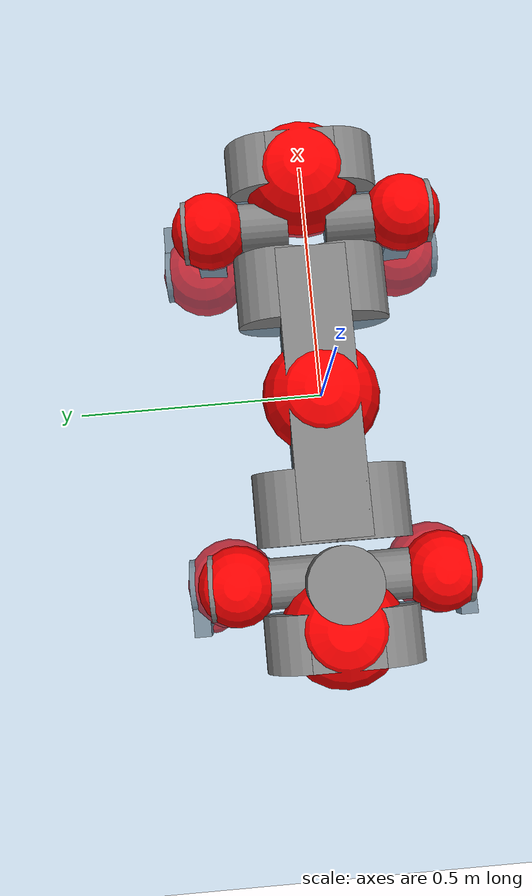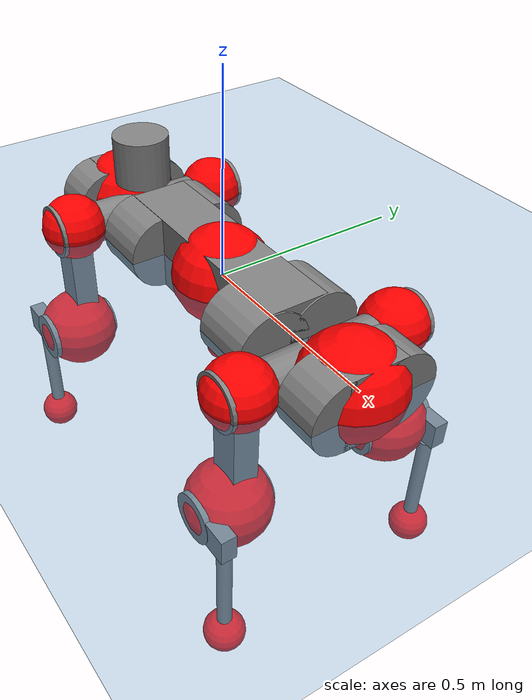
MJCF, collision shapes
<mujoco model="anymal_c">
  <compiler angle="radian" assetdir="assets" balanceinertia="true" inertiafromgeom="false"/>

  <option timestep="0.005" density="1.2" viscosity="2e-05"/>

  <size nkey="1"/>

  <visual>
    <quality shadowsize="8192"/>
    <map shadowclip="0.5"/>
  </visual>

  <default>
    <default class="/">
      <material specular="0" shininess="0.25"/>
      <geom contype="0" conaffinity="0" group="1" solref="-1000 -80"/>
      <site size="0.01 0.005 0.005" group="5"/>
      <general forcelimited="true" forcerange="-80 80" biastype="affine" gainprm="80" biasprm="0 -80 -2"/>
      <default class="anymal_c">
        <joint armature="0.01" damping="0.01" frictionloss="0.1"/>
        <default class="visual">
          <geom type="mesh" group="2"/>
          <default class="visual_zflip"/>
        </default>
        <default class="collision">
          <geom type="cylinder" group="3"/>
          <default class="foot">
            <geom size="0.03 0 0" type="sphere" condim="6" priority="1" friction="0.8 0.02 0.01" solimp="0.015 1 0.03"/>
          </default>
        </default>
      </default>
      <default class="reward_collision_sphere">
        <geom group="5" rgba="1 0 0 1"/>
      </default>
    </default>
  </default>

  <asset>
    <texture type="skybox" colorspace="auto" name="//unnamed_texture_0" builtin="gradient" rgb1="0.95 0.95 0.95" rgb2="0.95 0.95 0.95" width="100" height="600"/>
    <texture type="2d" colorspace="auto" name="texplane" builtin="checker" rgb1="0.345 0.575 0.748" rgb2="0.345 0.575 0.748" markrgb="1 1 1" width="512" height="512"/>
    <texture type="2d" colorspace="linear" name="base" file="base.png"/>
    <texture type="2d" colorspace="linear" name="top_shell" file="top_shell.png"/>
    <texture type="2d" colorspace="linear" name="bottom_shell" file="bottom_shell.png"/>
    <texture type="2d" colorspace="linear" name="remote" file="remote.png"/>
    <texture type="2d" colorspace="linear" name="hatch" file="hatch.png"/>
    <texture type="2d" colorspace="linear" name="handle" file="handle.png"/>
    <texture type="2d" colorspace="linear" name="face" file="face.png"/>
    <texture type="2d" colorspace="linear" name="battery" file="battery.png"/>
    <texture type="2d" colorspace="linear" name="lidar_cage" file="lidar_cage.png"/>
    <texture type="2d" colorspace="linear" name="depth_camera" file="depth_camera.png"/>
    <texture type="2d" colorspace="linear" name="wide_angle_camera" file="wide_angle_camera.png"/>
    <texture type="2d" colorspace="linear" name="lidar" file="lidar.png"/>
    <texture type="2d" colorspace="linear" name="drive" file="drive.png"/>
    <texture type="2d" colorspace="linear" name="hip_l" file="hip_l.png"/>
    <texture type="2d" colorspace="linear" name="shank_l" file="shank_l.png"/>
    <texture type="2d" colorspace="linear" name="foot" file="foot.png"/>
    <texture type="2d" colorspace="linear" name="thigh" file="thigh.png"/>
    <texture type="2d" colorspace="linear" name="shank_r" file="shank_r.png"/>
    <texture type="2d" colorspace="linear" name="hip_r" file="hip_r.png"/>
    <material name="MatPlane" class="/" texture="texplane" texuniform="true" texrepeat="2 2" specular="0.9" shininess="0.5"/>
    <material name="black_plastic" class="/" rgba="0.007 0.007 0.007 1"/>
    <material name="green" class="/" rgba="0.052 0.178 0.033 1"/>
    <material name="red" class="/" rgba="0.178 0.006 0.005 1"/>
    <material name="yellow" class="/" rgba="0.178 0.119 0.006 1"/>
    <material name="lwl" class="/" rgba="0.8 0.8 0.8 1"/>
    <material name="base" class="/" texture="base"/>
    <material name="top_shell" class="/" texture="top_shell"/>
    <material name="bottom_shell" class="/" texture="bottom_shell"/>
    <material name="hip_l" class="/" texture="hip_l"/>
    <material name="thigh" class="/" texture="thigh"/>
    <material name="shank_l" class="/" texture="shank_l"/>
    <material name="foot" class="/" texture="foot"/>
    <material name="hip_r" class="/" texture="hip_r"/>
    <material name="shank" class="/" texture="shank_r"/>
    <material name="hatch" class="/" texture="hatch"/>
    <material name="remote" class="/" texture="remote"/>
    <material name="handle" class="/" texture="handle"/>
    <material name="face" class="/" texture="face"/>
    <material name="depth_camera" class="/" texture="depth_camera"/>
    <material name="wide_angle_camera" class="/" texture="wide_angle_camera"/>
    <material name="battery" class="/" texture="battery"/>
    <material name="lidar_cage" class="/" texture="lidar_cage"/>
    <material name="lidar" class="/" texture="lidar"/>
    <material name="drive" class="/" texture="drive"/>
    <mesh name="base_0" class="/" file="base_0.obj"/>
    <mesh name="base_1" class="/" file="base_1.obj"/>
    <mesh name="base_2" class="/" file="base_2.obj"/>
    <mesh name="base_3" class="/" file="base_3.obj"/>
    <mesh name="base_4" class="/" file="base_4.obj"/>
    <mesh name="base_5" class="/" file="base_5.obj"/>
    <mesh name="top_shell" class="/" file="top_shell.obj"/>
    <mesh name="bottom_shell" class="/" file="bottom_shell.obj"/>
    <mesh name="remote" class="/" file="remote.obj"/>
    <mesh name="handle" class="/" file="handle.obj"/>
    <mesh name="face" class="/" file="face.obj"/>
    <mesh name="wide_angle_camera" class="/" file="wide_angle_camera.obj"/>
    <mesh name="depth_camera" class="/" file="depth_camera.obj"/>
    <mesh name="battery" class="/" file="battery.obj"/>
    <mesh name="lidar_cage" class="/" file="lidar_cage.obj"/>
    <mesh name="lidar" class="/" file="lidar.obj"/>
    <mesh name="drive" class="/" file="drive.obj"/>
    <mesh name="hip_l" class="/" file="hip_l.obj"/>
    <mesh name="thigh" class="/" file="thigh.obj"/>
    <mesh name="shank_l" class="/" file="shank_l.obj"/>
    <mesh name="foot" class="/" file="foot.obj"/>
    <mesh name="hip_r" class="/" file="hip_r.obj"/>
    <mesh name="hatch" class="/" file="hatch.obj"/>
    <mesh name="shank_r" class="/" file="shank_r.obj"/>
  </asset>

  <worldbody>
    <geom name="floor" class="/" size="100 100 0.125" type="plane" group="0" material="MatPlane"/>
    <light name="toplight_shadow" class="/" pos="0 0 5" dir="0.0990148 0.0990148 -0.990148" type="directional" ambient="0.04 0.04 0.04" diffuse="0.55 0.55 0.55" specular="0.12 0.12 0.12"/>
    <light name="toplight_fill" class="/" pos="0 0 5" dir="0.0990148 0.0990148 -0.990148" type="directional" castshadow="false" ambient="0.04 0.04 0.04" diffuse="0.3 0.3 0.3" specular="0.08 0.08 0.08"/>
    <body name="trunk" childclass="anymal_c" pos="-0.000613141 5.08841e-05 0.00156693" quat="0.999999 0.000904384 0.000559264 0.0003936">
      <inertial pos="0.00181855 -0.0022669 0.0506395" quat="0.499859 0.500353 0.500243 0.499545" mass="21.2384" diaginertia="0.826189 0.498348 0.316442"/>
      <joint name="//unnamed_joint_0" type="free" armature="0" damping="0" frictionloss="0"/>
      <geom name="//unnamed_geom_1" class="visual" material="green" mesh="base_0"/>
      <geom name="//unnamed_geom_2" class="visual" material="yellow" mesh="base_1"/>
      <geom name="//unnamed_geom_3" class="visual" material="red" mesh="base_2"/>
      <geom name="//unnamed_geom_4" class="visual" material="black_plastic" mesh="base_3"/>
      <geom name="//unnamed_geom_5" class="visual" material="lwl" mesh="base_4"/>
      <geom name="//unnamed_geom_6" class="visual" material="base" mesh="base_5"/>
      <geom name="trunk_1" class="collision" size="0.298778 0.0721188 0.0927242" type="box"/>
      <geom name="trunk_2" class="collision" size="0.0927242 0.0746945" pos="0.229064 0.0670231 0" quat="0.707107 0 0.707107 0"/>
      <geom name="trunk_3" class="collision" size="0.0927242 0.0746945" pos="-0.229064 0.0670231 0" quat="0.707107 0 0.707107 0"/>
      <geom name="trunk_4" class="collision" size="0.0927242 0.0746945" pos="0.229064 -0.0670231 0" quat="0.707107 0 0.707107 0"/>
      <geom name="trunk_5" class="collision" size="0.0927242 0.0746945" pos="-0.229064 -0.0670231 0" quat="0.707107 0 0.707107 0"/>
      <geom name="//unnamed_geom_12" class="visual" material="top_shell" mesh="top_shell"/>
      <geom name="//unnamed_geom_13" class="visual" material="bottom_shell" mesh="bottom_shell"/>
      <geom name="//unnamed_geom_14" class="visual" material="remote" mesh="remote"/>
      <geom name="//unnamed_geom_15" class="visual" material="handle" mesh="handle"/>
      <geom name="//unnamed_geom_16" class="visual" pos="0.436538 0 0" quat="1 0 0 0" material="face" mesh="face"/>
      <geom name="trunk_6" class="collision" size="0.0566648 0.0721188 0.0927242" pos="0.494462 0 0" type="box"/>
      <geom name="//unnamed_geom_18" class="collision" size="0.0927242 0.0566648" pos="0.494462 0.0670231 0" quat="0.707107 0 0.707107 0"/>
      <geom name="//unnamed_geom_19" class="collision" size="0.0927242 0.0566648" pos="0.494462 -0.0670231 0" quat="0.707107 0 0.707107 0"/>
      <geom name="//unnamed_geom_20" class="visual" pos="0.486196 0 -0.0317461" quat="0.965926 0 0.258819 0" material="depth_camera" mesh="depth_camera"/>
      <geom name="//unnamed_geom_21" class="visual" pos="0.540275 0 0.0161701" material="wide_angle_camera" mesh="wide_angle_camera"/>
      <geom name="//unnamed_geom_22" class="visual_zflip" pos="-0.436538 0 0" quat="0 0 0 1" material="face" mesh="face"/>
      <geom name="trunk_7" class="collision" size="0.0566648 0.0721188 0.0927242" pos="-0.494462 0 0" quat="0 0 0 1" type="box"/>
      <geom name="//unnamed_geom_24" class="collision" size="0.0927242 0.0566648" pos="-0.494462 -0.0670231 0" quat="0 -0.707107 0 0.707107"/>
      <geom name="//unnamed_geom_25" class="collision" size="0.0927242 0.0566648" pos="-0.494462 0.0670231 0" quat="0 -0.707107 0 0.707107"/>
      <geom name="//unnamed_geom_26" class="visual" pos="-0.486196 0 -0.0317461" quat="0 -0.258819 0 0.965926" material="depth_camera" mesh="depth_camera"/>
      <geom name="//unnamed_geom_27" class="visual_zflip" pos="-0.540275 0 0.0161701" quat="0 0 0 1" material="wide_angle_camera" mesh="wide_angle_camera"/>
      <geom name="//unnamed_geom_28" class="visual" material="battery" mesh="battery"/>
      <geom name="//unnamed_geom_29" class="visual" pos="0 0.0719538 0.0311736" quat="0.683013 -0.183013 0.183013 0.683013" material="depth_camera" mesh="depth_camera"/>
      <geom name="//unnamed_geom_30" class="visual" pos="0 -0.0719538 0.0311736" quat="0.683013 0.183013 0.183013 -0.683013" material="depth_camera" mesh="depth_camera"/>
      <geom name="//unnamed_geom_31" class="visual" pos="-0.383353 0 0.0793923" quat="1 0 0 0" material="lidar_cage" mesh="lidar_cage"/>
      <geom name="trunk_8" class="collision" size="0.0721188 0.0618161" pos="-0.383353 0 0.144202"/>
      <geom name="//unnamed_geom_33" class="visual" pos="-0.383353 -3.75954e-05 0.1536" quat="0.707107 0 0 -0.707107" material="lidar" mesh="lidar"/>
      <geom name="//unnamed_geom_34" class="visual" pos="0.315845 0.0996208 -2.11647e-09" quat="0.258819 0.965926 0 0" material="drive" mesh="drive"/>
      <geom name="//unnamed_geom_35" class="visual" pos="0.315845 -0.0996208 2.11647e-09" quat="0.258819 -0.965926 0 0" material="drive" mesh="drive"/>
      <geom name="//unnamed_geom_36" class="visual" pos="-0.315845 0.0996208 2.11647e-09" quat="0 0 0.965926 -0.258819" material="drive" mesh="drive"/>
      <geom name="//unnamed_geom_37" class="visual" pos="-0.315845 -0.0996208 -2.11647e-09" quat="0 0 -0.965926 -0.258819" material="drive" mesh="drive"/>
      <geom name="//unnamed_geom_38" class="visual" pos="0.122167 0 0.0788522" quat="1 0 0 0" material="hatch" mesh="hatch"/>
      <geom name="//unnamed_geom_39" class="reward_collision_sphere" size="0.123632"/>
      <geom name="//unnamed_geom_40" class="reward_collision_sphere" size="0.123632" pos="0.473925 0 0"/>
      <geom name="//unnamed_geom_41" class="reward_collision_sphere" size="0.123632" pos="-0.473925 0 0"/>
      <site name="imu" pos="0.271112 0.00708567 0.0407766" size="0.0103027"/>
      <camera name="track" pos="0 -1.91495 0" quat="0.707107 0.707107 0 0" mode="trackcom"/>
      <camera name="ego_camera" pos="0.473925 0 -0.0432067" quat="-0.5 -0.5 0.5 0.5"/>
      <body name="LF_HIP" pos="0.313504 0.0969816 -0.00150041" quat="0.258525 0.966004 -4.17248e-05 -0.000265187">
        <inertial pos="0.0597874 -0.0171247 -0.00773044" quat="-0.129395 0.709804 -0.134594 0.679205" mass="3.10812" diaginertia="0.00754277 0.00379351 0.00478045"/>
        <joint name="LF_HAA" pos="0 0 0" axis="0.999993 0.00157768 0.00338368" range="-0.720631 0.530701" armature="0.00997852" damping="0.0246487" frictionloss="0.0883608"/>
        <geom name="//unnamed_geom_42" class="visual" pos="0 -0.000124502 2.04494e-05" quat="0.258819 -0.965926 0 0" material="hip_l" mesh="hip_l"/>
        <geom name="//unnamed_geom_43" class="visual" pos="0.0630847 -0.0752242 -0.0443382" quat="0.183013 -0.683013 0.683013 0.183013" material="drive" mesh="drive"/>
        <geom name="//unnamed_geom_44" class="collision" size="0.0515135 0.0721188" pos="0.0630847 -0.0114512 -0.00745855" quat="-0.353553 -0.612372 0.612372 -0.353553"/>
        <body name="LF_THIGH" pos="0.0607717 -0.0676698 -0.0436672" quat="0.183973 -0.682782 0.682883 0.183395">
          <inertial pos="0.0318418 -8.01889e-05 -0.262678" quat="0.992779 0.0033829 -0.0898477 0.0794032" mass="3.2816" diaginertia="0.0398614 0.0240143 0.00632036"/>
          <joint name="LF_HFE" pos="0 0 0" axis="1 0.000302271 -0.000214419" stiffness="0.00445632" range="-3.09738 3.19508" armature="0.00998781" damping="0.0212089" frictionloss="0.0890545"/>
          <geom name="//unnamed_geom_45" class="visual" pos="0.00190393 3.00014e-06 0" quat="0.707107 0 0 -0.707107" material="thigh" mesh="thigh"/>
          <geom name="//unnamed_geom_46" class="collision" size="0.0669675 0.0412108" pos="0.0421267 0 0" quat="0.5 0.5 -0.5 -0.5"/>
          <geom name="//unnamed_geom_47" class="collision" size="0.0386351 0.0309081 0.145591" pos="0.031595 0 -0.152643" quat="0.707107 0 0 -0.707107" type="box"/>
          <geom name="//unnamed_geom_48" class="visual" pos="0.105633 0 -0.307848" quat="1 0 0 0" material="drive" mesh="drive"/>
          <geom name="//unnamed_geom_49" class="collision" size="0.0515135 0.0721188" pos="0.031911 0 -0.307848" quat="0.707107 0 0.707107 0"/>
          <geom name="//unnamed_geom_50" class="reward_collision_sphere" size="0.0824215" pos="0.0263292 0 0"/>
          <body name="LF_SHANK" pos="0.106395 0.0022866 -0.306254" quat="1 9.62545e-05 0.000252241 9.42601e-06">
            <inertial pos="0.00520976 -0.0585435 -0.0895619" quat="0.992898 -0.116283 -0.000918025 -0.0251091" mass="0.650896" diaginertia="0.0128216 0.0073732 0.00165398"/>
            <joint name="LF_KFE" pos="0 0 0" axis="0.999988 -0.00266107 -0.00405973" range="-3.08367 3.14781" armature="0.0110268" damping="0.00383063" frictionloss="0.104429"/>
            <geom name="//unnamed_geom_51" class="visual" pos="0.000620828 0.00331029 0" quat="0.707107 0 0 -0.707107" material="shank_l" mesh="shank_l"/>
            <geom name="LF_kfe_act" class="collision" size="0.0618161 0.0206054" pos="0.0210633 0 0" quat="0.5 0.5 -0.5 -0.5"/>
            <geom name="//unnamed_geom_53" class="collision" size="0.0592394 0.0347716 0.0195751" pos="0.0210633 -0.0550538 0" quat="0.5 0.5 -0.5 -0.5" type="box"/>
            <geom name="//unnamed_geom_54" class="visual" pos="0.0137437 -0.083143 -0.365064" quat="0.382683 0 0 -0.92388" material="foot" mesh="foot"/>
            <geom name="LF_calf" class="collision" size="0.0180297 0.145528" pos="0.0137438 -0.0842098 -0.182532" quat="0.707107 0 0 -0.707107"/>
            <geom name="LF_foot" class="foot" size="0.0306452" pos="0.0137438 -0.0842098 -0.34076" quat="0.707107 0 0 -0.707107"/>
            <geom name="//unnamed_geom_57" class="reward_collision_sphere" size="0.103027" pos="-0.0526584 0 0"/>
            <geom name="//unnamed_geom_58" class="reward_collision_sphere" size="0.0515135" pos="0.0137438 -0.0842098 -0.34076"/>
            <site name="LF_foot" class="foot" pos="0.0137438 -0.0842098 -0.34076" quat="0.707107 0 0 -0.707107" size="0.0103027"/>
          </body>
        </body>
      </body>
      <body name="RF_HIP" pos="0.314432 -0.100313 -0.000304695" quat="0.258944 -0.965892 7.34147e-05 0.000164308">
        <inertial pos="0.0569876 0.0141712 -0.0118799" quat="0.140898 0.677189 0.129603 0.710469" mass="3.05962" diaginertia="0.00729322 0.0040263 0.00464167"/>
        <joint name="RF_HAA" pos="0 0 0" axis="0.999934 0.000766703 0.01144" range="-0.505627 0.721438" armature="0.0106188" damping="0" frictionloss="0.111988"/>
        <geom name="//unnamed_geom_59" class="visual" pos="0 0.000124501 2.04494e-05" quat="0.258819 0.965926 0 0" material="hip_r" mesh="hip_r"/>
        <geom name="//unnamed_geom_60" class="visual" pos="0.0630847 0.0752242 -0.0443382" quat="0.183013 0.683013 0.683013 -0.183013" material="drive" mesh="drive"/>
        <geom name="//unnamed_geom_61" class="collision" size="0.0515135 0.0721188" pos="0.0630847 0.0114512 -0.00745855" quat="-0.353553 0.612372 0.612372 0.353553"/>
        <body name="RF_THIGH" pos="0.0659788 0.0673312 -0.0474757" quat="0.182695 0.683339 0.683026 -0.18206">
          <inertial pos="0.0342601 -0.00126565 -0.267838" quat="0.993791 0.00130356 -0.0808309 0.0764463" mass="3.48008" diaginertia="0.0379198 0.023374 0.00630873"/>
          <joint name="RF_HFE" pos="0 0 0" axis="0.999999 0.0010157 -0.000707301" range="-3.1131 3.14436" armature="0.00897247" damping="0.0110487" frictionloss="0.113863"/>
          <geom name="//unnamed_geom_62" class="visual" pos="0.00190393 3.00014e-06 0" quat="0.707107 0 0 -0.707107" material="thigh" mesh="thigh"/>
          <geom name="//unnamed_geom_63" class="collision" size="0.0669675 0.0412108" pos="0.0421267 0 0" quat="0.5 0.5 0.5 0.5"/>
          <geom name="//unnamed_geom_64" class="collision" size="0.0386351 0.0309081 0.145591" pos="0.031595 0 -0.152643" quat="0.707107 0 0 0.707107" type="box"/>
          <geom name="//unnamed_geom_65" class="visual" pos="0.105633 0 -0.307848" quat="1 0 0 0" material="drive" mesh="drive"/>
          <geom name="//unnamed_geom_66" class="collision" size="0.0515135 0.0721188" pos="0.031911 0 -0.307848" quat="0.707107 0 0.707107 0"/>
          <geom name="//unnamed_geom_67" class="reward_collision_sphere" size="0.0824215" pos="0.0263292 0 0"/>
          <body name="RF_SHANK" pos="0.1025 0.000817171 -0.308819" quat="0.999999 0.000588708 6.13408e-05 0.0012168">
            <inertial pos="0.0032175 0.0587126 -0.0868036" quat="0.993053 0.113426 0.0010094 0.0313013" mass="0.687919" diaginertia="0.0139575 0.00745963 0.00171091"/>
            <joint name="RF_KFE" pos="0 0 0" axis="0.999993 -0.00330974 0.00163356" range="-3.17302 3.08103" armature="0.0117935" damping="0.0175307" frictionloss="0.114836"/>
            <geom name="//unnamed_geom_68" class="visual" pos="0.000620825 -0.00331028 0" quat="0.707107 0 0 0.707107" material="shank" mesh="shank_r"/>
            <geom name="RF_kfe_act" class="collision" size="0.0618161 0.0206054" pos="0.0210633 0 0" quat="0.5 0.5 0.5 0.5"/>
            <geom name="//unnamed_geom_70" class="collision" size="0.0592394 0.0347716 0.0195751" pos="0.0210633 0.0550538 0" quat="0.5 0.5 0.5 0.5" type="box"/>
            <geom name="//unnamed_geom_71" class="visual" pos="0.013744 0.083143 -0.365064" quat="0.382683 0 0 0.92388" material="foot" mesh="foot"/>
            <geom name="RF_calf" class="collision" size="0.0180297 0.145528" pos="0.0137438 0.0842098 -0.182532" quat="0.707107 0 0 0.707107"/>
            <geom name="RF_foot" class="foot" size="0.0278826" pos="0.0137438 0.0842098 -0.34076" quat="0.707107 0 0 0.707107"/>
            <geom name="//unnamed_geom_74" class="reward_collision_sphere" size="0.103027" pos="-0.0526584 0 0"/>
            <geom name="//unnamed_geom_75" class="reward_collision_sphere" size="0.0515135" pos="0.0137438 0.0842098 -0.34076"/>
            <site name="RF_foot" class="foot" pos="0.0137438 0.0842098 -0.34076" quat="0.707107 0 0 0.707107" size="0.0103027"/>
          </body>
        </body>
      </body>
      <body name="LH_HIP" pos="-0.313265 0.0973115 -0.00161507" quat="0.000117402 -0.000430004 0.965885 -0.258972">
        <inertial pos="0.0598566 0.0172639 -0.0104741" quat="0.140941 0.678114 0.11634 0.711872" mass="3.09556" diaginertia="0.00780415 0.00403277 0.00477376"/>
        <joint name="LH_HAA" pos="0 0 0" axis="0.999906 -0.0129731 0.00452001" range="-0.496593 0.757658" armature="0.0109545" damping="0.00159484" frictionloss="0.102101"/>
        <geom name="//unnamed_geom_76" class="visual" pos="0 0.000124501 2.04494e-05" quat="-0.258819 -0.965926 0 0" material="hip_r" mesh="hip_r"/>
        <geom name="//unnamed_geom_77" class="visual" pos="0.0630847 0.0752242 -0.0443382" quat="0.183013 0.683013 0.683013 -0.183013" material="drive" mesh="drive"/>
        <geom name="//unnamed_geom_78" class="collision" size="0.0515135 0.0721188" pos="0.0630847 0.0114512 -0.00745855" quat="-0.353553 0.612372 0.612372 0.353553"/>
        <body name="LH_THIGH" pos="0.0621831 0.0678221 -0.0437669" quat="0.183422 0.683084 0.682912 -0.182711">
          <inertial pos="0.0317012 0.00128617 -0.266757" quat="0.992881 -0.00310843 -0.0803551 0.0878688" mass="3.15676" diaginertia="0.037288 0.0240219 0.0060655"/>
          <joint name="LH_HFE" pos="0 0 0" axis="0.999999 0.0010665 0.000647896" stiffness="0.00764149" range="-3.19396 3.08284" armature="0.0102306" damping="0" frictionloss="0.104408"/>
          <geom name="//unnamed_geom_79" class="visual" pos="0.00190393 3.00014e-06 0" quat="0.707107 0 0 -0.707107" material="thigh" mesh="thigh"/>
          <geom name="//unnamed_geom_80" class="collision" size="0.0669675 0.0412108" pos="0.0421267 0 0" quat="0.5 0.5 -0.5 -0.5"/>
          <geom name="//unnamed_geom_81" class="collision" size="0.0386351 0.0309081 0.145591" pos="0.031595 0 -0.152643" quat="0.707107 0 0 -0.707107" type="box"/>
          <geom name="//unnamed_geom_82" class="visual" pos="0.105633 0 -0.307848" quat="1 0 0 0" material="drive" mesh="drive"/>
          <geom name="//unnamed_geom_83" class="collision" size="0.0515135 0.0721188" pos="0.031911 0 -0.307848" quat="0.707107 0 0.707107 0"/>
          <geom name="//unnamed_geom_84" class="reward_collision_sphere" size="0.0824215" pos="0.0263292 0 0"/>
          <body name="LH_SHANK" pos="0.104235 0.000804153 -0.309943" quat="1 -1.66892e-05 -3.54071e-05 0.000104079">
            <inertial pos="0.00832568 0.060815 -0.0884338" quat="0.993689 0.108796 0.0111016 0.0249417" mass="0.651556" diaginertia="0.01281 0.0077147 0.00168409"/>
            <joint name="LH_KFE" pos="0 0 0" axis="0.999999 -0.000540267 0.00114367" stiffness="0.0012412" range="-3.09589 3.08303" armature="0.0112563" damping="0.0183837" frictionloss="0.0901037"/>
            <geom name="//unnamed_geom_85" class="visual" pos="0.000620825 -0.00331028 0" quat="-0.707107 0 0 -0.707107" material="shank" mesh="shank_r"/>
            <geom name="LH_kfe_act" class="collision" size="0.0618161 0.0206054" pos="0.0210633 0 0" quat="0.5 0.5 -0.5 -0.5"/>
            <geom name="//unnamed_geom_87" class="collision" size="0.0592394 0.0347716 0.0195751" pos="0.0210633 0.0550538 0" quat="0.5 0.5 -0.5 -0.5" type="box"/>
            <geom name="//unnamed_geom_88" class="visual" pos="0.013744 0.083143 -0.365064" quat="-0.382683 0 0 -0.92388" material="foot" mesh="foot"/>
            <geom name="LH_calf" class="collision" size="0.0180297 0.145528" pos="0.0137438 0.0842098 -0.182532" quat="0.707107 0 0 -0.707107"/>
            <geom name="LH_foot" class="foot" size="0.0356421" pos="0.0137438 0.0842098 -0.34076" quat="0.707107 0 0 -0.707107"/>
            <geom name="//unnamed_geom_91" class="reward_collision_sphere" size="0.103027" pos="-0.0526584 0 0"/>
            <geom name="//unnamed_geom_92" class="reward_collision_sphere" size="0.0515135" pos="0.0137438 0.0842098 -0.34076"/>
            <site name="LH_foot" class="foot" pos="0.0137438 0.0842098 -0.34076" quat="0.707107 0 0 -0.707107" size="0.0103027"/>
          </body>
        </body>
      </body>
      <body name="RH_HIP" pos="-0.314987 -0.100479 0.00242135" quat="-1.41415e-05 0.000145884 -0.965963 -0.258679">
        <inertial pos="0.0568969 -0.0121411 -0.010567" quat="-0.125872 0.710698 -0.13363 0.679123" mass="3.09804" diaginertia="0.0074869 0.00392425 0.00479694"/>
        <joint name="RH_HAA" pos="0 0 0" axis="0.999949 -0.00811939 0.00608528" range="-0.764256 0.546176" armature="0.00923787" damping="0" frictionloss="0.102185"/>
        <geom name="//unnamed_geom_93" class="visual" pos="0 -0.000124502 2.04494e-05" quat="-0.258819 0.965926 0 0" material="hip_l" mesh="hip_l"/>
        <geom name="//unnamed_geom_94" class="visual" pos="0.0630847 -0.0752242 -0.0443382" quat="-0.183013 0.683013 -0.683013 -0.183013" material="drive" mesh="drive"/>
        <geom name="//unnamed_geom_95" class="collision" size="0.0515135 0.0721188" pos="0.0630847 -0.0114512 -0.00745855" quat="0.353553 0.612372 -0.612372 0.353553"/>
        <body name="RH_THIGH" pos="0.0643524 -0.0674415 -0.0466965" quat="-0.183611 0.682319 -0.683649 -0.182626">
          <inertial pos="0.0319635 0.00264778 -0.264763" quat="0.993159 -0.00519527 -0.0807933 0.0841512" mass="3.12789" diaginertia="0.0365144 0.0235072 0.00600008"/>
          <joint name="RH_HFE" pos="0 0 0" axis="1 -0.000683268 -0.000709646" range="-3.08562 3.12637" armature="0.0104927" damping="0.0200045" frictionloss="0.100645"/>
          <geom name="//unnamed_geom_96" class="visual" pos="0.00190393 3.00014e-06 0" quat="0.707107 0 0 -0.707107" material="thigh" mesh="thigh"/>
          <geom name="//unnamed_geom_97" class="collision" size="0.0669675 0.0412108" pos="0.0421267 0 0" quat="0.5 0.5 0.5 0.5"/>
          <geom name="//unnamed_geom_98" class="collision" size="0.0386351 0.0309081 0.145591" pos="0.031595 0 -0.152643" quat="0.707107 0 0 0.707107" type="box"/>
          <geom name="//unnamed_geom_99" class="visual" pos="0.105633 0 -0.307848" quat="1 0 0 0" material="drive" mesh="drive"/>
          <geom name="//unnamed_geom_100" class="collision" size="0.0515135 0.0721188" pos="0.031911 0 -0.307848" quat="0.707107 0 0.707107 0"/>
          <geom name="//unnamed_geom_101" class="reward_collision_sphere" size="0.0824215" pos="0.0263292 0 0"/>
          <body name="RH_SHANK" pos="0.105165 0.00240776 -0.308242" quat="1 0.000510347 -0.000708723 0.000266253">
            <inertial pos="0.00840094 -0.060722 -0.0863846" quat="0.993845 -0.10844 0.00917671 -0.0206869" mass="0.645248" diaginertia="0.0127742 0.00743162 0.00159488"/>
            <joint name="RH_KFE" pos="0 0 0" axis="0.999974 0.00247384 0.00675272" range="-3.11961 3.17729" armature="0.0100183" damping="0.0179641" frictionloss="0.114627"/>
            <geom name="//unnamed_geom_102" class="visual" pos="0.000620828 0.00331029 0" quat="0.707107 0 0 -0.707107" material="shank_l" mesh="shank_l"/>
            <geom name="RH_kfe_act" class="collision" size="0.0618161 0.0206054" pos="0.0210633 0 0" quat="0.5 0.5 0.5 0.5"/>
            <geom name="//unnamed_geom_104" class="collision" size="0.0592394 0.0347716 0.0195751" pos="0.0210633 -0.0550538 0" quat="0.5 0.5 0.5 0.5" type="box"/>
            <geom name="//unnamed_geom_105" class="visual" pos="0.0137437 -0.083143 -0.365064" quat="0.382683 0 0 -0.92388" material="foot" mesh="foot"/>
            <geom name="RH_calf" class="collision" size="0.0180297 0.145528" pos="0.0137438 -0.0842098 -0.182532" quat="0.707107 0 0 0.707107"/>
            <geom name="RH_foot" class="foot" size="0.0265961" pos="0.0137438 -0.0842098 -0.34076" quat="0.707107 0 0 0.707107"/>
            <geom name="//unnamed_geom_108" class="reward_collision_sphere" size="0.103027" pos="-0.0526584 0 0"/>
            <geom name="//unnamed_geom_109" class="reward_collision_sphere" size="0.0515135" pos="0.0137438 -0.0842098 -0.34076"/>
            <site name="RH_foot" class="foot" pos="0.0137438 -0.0842098 -0.34076" quat="0.707107 0 0 0.707107" size="0.0103027"/>
          </body>
        </body>
      </body>
    </body>
  </worldbody>

  <contact>
    <pair class="/" geom1="floor" geom2="LF_foot" name="//unnamed_contact_0"/>
    <pair class="/" geom1="floor" geom2="RF_foot" name="//unnamed_contact_1"/>
    <pair class="/" geom1="floor" geom2="LH_foot" name="//unnamed_contact_2"/>
    <pair class="/" geom1="floor" geom2="RH_foot" name="//unnamed_contact_3"/>
  </contact>

  <actuator>
    <general name="LF_HAA" class="/" joint="LF_HAA" forcerange="-74.6905 74.6905" gainprm="76.9623" biasprm="0 -76.9623 -2.02144"/>
    <general name="LF_HFE" class="/" joint="LF_HFE" forcerange="-77.4669 77.4669" gainprm="76.9623" biasprm="0 -76.9623 -2.02144"/>
    <general name="LF_KFE" class="/" joint="LF_KFE" forcerange="-78.794 78.794" gainprm="76.9623" biasprm="0 -76.9623 -2.02144"/>
    <general name="RF_HAA" class="/" joint="RF_HAA" forcerange="-80.5193 80.5193" gainprm="76.9623" biasprm="0 -76.9623 -2.02144"/>
    <general name="RF_HFE" class="/" joint="RF_HFE" forcerange="-92.5035 92.5035" gainprm="76.9623" biasprm="0 -76.9623 -2.02144"/>
    <general name="RF_KFE" class="/" joint="RF_KFE" forcerange="-83.1991 83.1991" gainprm="76.9623" biasprm="0 -76.9623 -2.02144"/>
    <general name="LH_HAA" class="/" joint="LH_HAA" forcerange="-82.7398 82.7398" gainprm="76.9623" biasprm="0 -76.9623 -2.02144"/>
    <general name="LH_HFE" class="/" joint="LH_HFE" forcerange="-74.2666 74.2666" gainprm="76.9623" biasprm="0 -76.9623 -2.02144"/>
    <general name="LH_KFE" class="/" joint="LH_KFE" forcerange="-89.7647 89.7647" gainprm="76.9623" biasprm="0 -76.9623 -2.02144"/>
    <general name="RH_HAA" class="/" joint="RH_HAA" forcerange="-85.5571 85.5571" gainprm="76.9623" biasprm="0 -76.9623 -2.02144"/>
    <general name="RH_HFE" class="/" joint="RH_HFE" forcerange="-89.9708 89.9708" gainprm="76.9623" biasprm="0 -76.9623 -2.02144"/>
    <general name="RH_KFE" class="/" joint="RH_KFE" forcerange="-83.1775 83.1775" gainprm="76.9623" biasprm="0 -76.9623 -2.02144"/>
  </actuator>

  <sensor>
    <gyro site="imu" name="imu_angular_velocity"/>
    <velocimeter site="imu" name="imu_linear_velocity"/>
    <framelinvel objtype="site" objname="LF_foot" name="LF_foot_global_linear_velocity"/>
    <framelinvel objtype="site" objname="RF_foot" name="RF_foot_global_linear_velocity"/>
    <framelinvel objtype="site" objname="LH_foot" name="LH_foot_global_linear_velocity"/>
    <framelinvel objtype="site" objname="RH_foot" name="RH_foot_global_linear_velocity"/>
  </sensor>

  <keyframe>
    <key name="home" qpos="0 0 0.55 1 0 0 0 0 0.4 -0.8 0 -0.4 0.8 0 -0.4 0.8 0 0.4 -0.8"/>
  </keyframe>
</mujoco>
